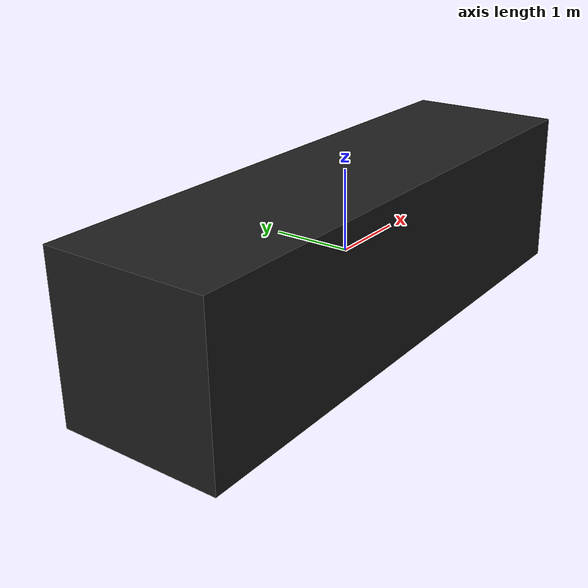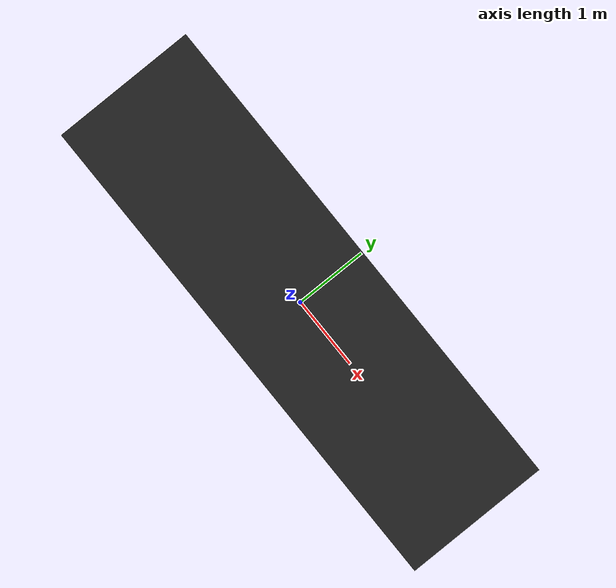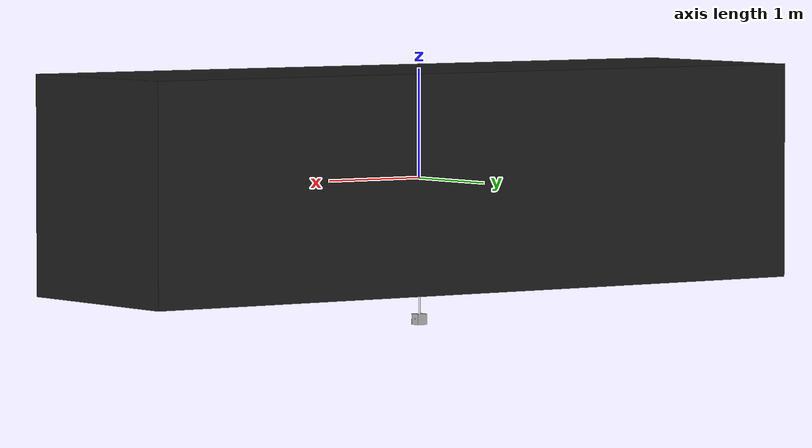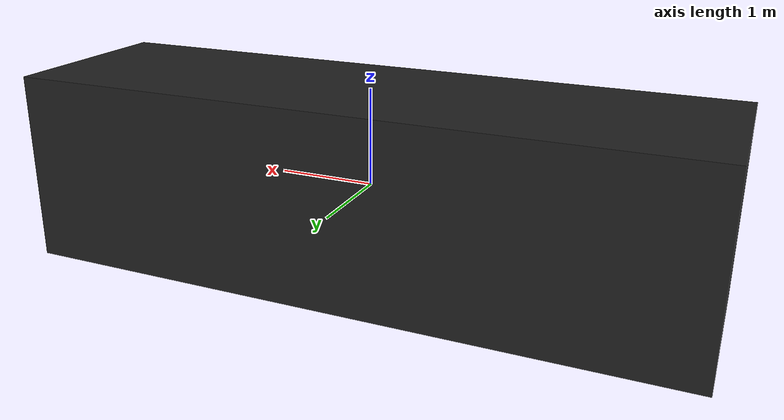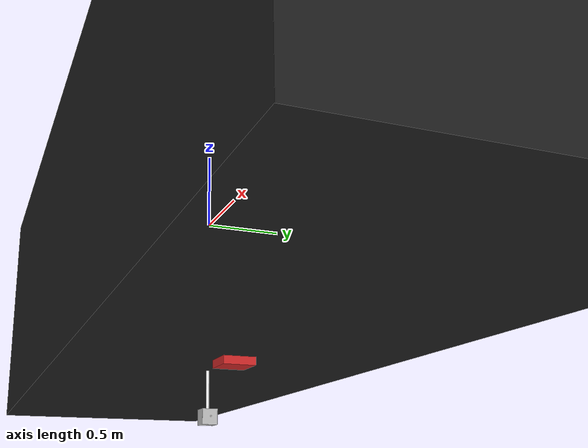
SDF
<?xml version='1.0'?>
<sdf version='1.7'>
  <model name='blimp_model'>
    <link name='link_0'>
      <pose>0 0 -1.3 0 -0 0</pose>
      <self_collide>0</self_collide>
      <enable_wind>0</enable_wind>
      <kinematic>1</kinematic>
      <visual name='visual'>
        <pose>0 0 0 0 -0 0</pose>
        <geometry>
          <box>
            <size>0.09 0.09 0.09</size>
          </box>
        </geometry>
        <material>
          <lighting>1</lighting>
          <script>
            <uri>file://media/materials/scripts/gazebo.material</uri>
            <name>Gazebo/White</name>
          </script>
          <shader type='pixel'/>
        </material>
        <transparency>0</transparency>
        <cast_shadows>1</cast_shadows>
      </visual>
      <collision name='collision'>
        <laser_retro>0</laser_retro>
        <max_contacts>10</max_contacts>
        <pose>0 0 0 0 -0 0</pose>
        <geometry>
          <box>
            <size>0.09 0.09 0.09</size>
          </box>
        </geometry>
        <surface>
          <friction>
            <ode>
              <mu>1</mu>
              <mu2>1</mu2>
              <fdir1>0 0 0</fdir1>
              <slip1>0</slip1>
              <slip2>0</slip2>
            </ode>
            <torsional>
              <coefficient>1</coefficient>
              <patch_radius>0</patch_radius>
              <surface_radius>0</surface_radius>
              <use_patch_radius>1</use_patch_radius>
              <ode>
                <slip>0</slip>
              </ode>
            </torsional>
          </friction>
          <bounce>
            <restitution_coefficient>0</restitution_coefficient>
            <threshold>1e+06</threshold>
          </bounce>
          <contact>
            <collide_without_contact>0</collide_without_contact>
            <collide_without_contact_bitmask>1</collide_without_contact_bitmask>
            <collide_bitmask>1</collide_bitmask>
            <ode>
              <soft_cfm>0</soft_cfm>
              <soft_erp>0.2</soft_erp>
              <kp>1e+13</kp>
              <kd>1</kd>
              <max_vel>0.01</max_vel>
              <min_depth>0</min_depth>
            </ode>
            <bullet>
              <split_impulse>1</split_impulse>
              <split_impulse_penetration_threshold>-0.01</split_impulse_penetration_threshold>
              <soft_cfm>0</soft_cfm>
              <soft_erp>0.2</soft_erp>
              <kp>1e+13</kp>
              <kd>1</kd>
            </bullet>
          </contact>
        </surface>
      </collision>
    </link>
    <link name='link_0_1'>
      <pose>0 0 0 0 -0 0</pose>
      <self_collide>0</self_collide>
      <enable_wind>0</enable_wind>
      <kinematic>0</kinematic>
      <visual name='visual'>
        <pose>0 0 0 0 -0 0</pose>
        <geometry>
          <box>
            <size>7 2 2</size>
          </box>
        </geometry>
        <material>
          <lighting>1</lighting>
          <script>
            <uri>file://media/materials/scripts/gazebo.material</uri>
            <name>Gazebo/Black</name>
          </script>
          <shader type='pixel'/>
        </material>
        <transparency>0</transparency>
        <cast_shadows>1</cast_shadows>
      </visual>
      <collision name='collision'>
        <laser_retro>0</laser_retro>
        <max_contacts>10</max_contacts>
        <pose>0 0 0 0 -0 0</pose>
        <geometry>
          <box>
            <size>7 2 2</size>
          </box>
        </geometry>
        <surface>
          <friction>
            <ode>
              <mu>1</mu>
              <mu2>1</mu2>
              <fdir1>0 0 0</fdir1>
              <slip1>0</slip1>
              <slip2>0</slip2>
            </ode>
            <torsional>
              <coefficient>1</coefficient>
              <patch_radius>0</patch_radius>
              <surface_radius>0</surface_radius>
              <use_patch_radius>1</use_patch_radius>
              <ode>
                <slip>0</slip>
              </ode>
            </torsional>
          </friction>
          <bounce>
            <restitution_coefficient>0</restitution_coefficient>
            <threshold>1e+06</threshold>
          </bounce>
          <contact>
            <collide_without_contact>0</collide_without_contact>
            <collide_without_contact_bitmask>1</collide_without_contact_bitmask>
            <collide_bitmask>1</collide_bitmask>
            <ode>
              <soft_cfm>0</soft_cfm>
              <soft_erp>0.2</soft_erp>
              <kp>1e+13</kp>
              <kd>1</kd>
              <max_vel>0.01</max_vel>
              <min_depth>0</min_depth>
            </ode>
            <bullet>
              <split_impulse>1</split_impulse>
              <split_impulse_penetration_threshold>-0.01</split_impulse_penetration_threshold>
              <soft_cfm>0</soft_cfm>
              <soft_erp>0.2</soft_erp>
              <kp>1e+13</kp>
              <kd>1</kd>
            </bullet>
          </contact>
        </surface>
      </collision>
    </link>
    <link name='link_1'>
      <pose>0 0 -1.15 0 -0 0</pose>
      <self_collide>0</self_collide>
      <enable_wind>0</enable_wind>
      <kinematic>1</kinematic>
      <visual name='visual'>
        <pose>0 0 0 0 -0 0</pose>
        <geometry>
          <cylinder>
            <radius>0.01</radius>
            <length>0.3</length>
          </cylinder>
        </geometry>
        <material>
          <lighting>1</lighting>
          <script>
            <uri>file://media/materials/scripts/gazebo.material</uri>
            <name>Gazebo/White</name>
          </script>
          <shader type='pixel'/>
        </material>
        <transparency>0</transparency>
        <cast_shadows>1</cast_shadows>
      </visual>
      <collision name='collision'>
        <laser_retro>0</laser_retro>
        <max_contacts>10</max_contacts>
        <pose>0 0 0 0 -0 0</pose>
        <geometry>
          <cylinder>
            <radius>0.01</radius>
            <length>0.3</length>
          </cylinder>
        </geometry>
        <surface>
          <friction>
            <ode>
              <mu>1</mu>
              <mu2>1</mu2>
              <fdir1>0 0 0</fdir1>
              <slip1>0</slip1>
              <slip2>0</slip2>
            </ode>
            <torsional>
              <coefficient>1</coefficient>
              <patch_radius>0</patch_radius>
              <surface_radius>0</surface_radius>
              <use_patch_radius>1</use_patch_radius>
              <ode>
                <slip>0</slip>
              </ode>
            </torsional>
          </friction>
          <bounce>
            <restitution_coefficient>0</restitution_coefficient>
            <threshold>1e+06</threshold>
          </bounce>
          <contact>
            <collide_without_contact>0</collide_without_contact>
            <collide_without_contact_bitmask>1</collide_without_contact_bitmask>
            <collide_bitmask>1</collide_bitmask>
            <ode>
              <soft_cfm>0</soft_cfm>
              <soft_erp>0.2</soft_erp>
              <kp>1e+13</kp>
              <kd>1</kd>
              <max_vel>0.01</max_vel>
              <min_depth>0</min_depth>
            </ode>
            <bullet>
              <split_impulse>1</split_impulse>
              <split_impulse_penetration_threshold>-0.01</split_impulse_penetration_threshold>
              <soft_cfm>0</soft_cfm>
              <soft_erp>0.2</soft_erp>
              <kp>1e+13</kp>
              <kd>1</kd>
            </bullet>
          </contact>
        </surface>
      </collision>
    </link>
    <link name='link_1_0'>
      <inertial>
        <mass>0.217069</mass>
        <inertia>
          <ixx>0.0110663</ixx>
          <ixy>0</ixy>
          <ixz>0</ixz>
          <iyy>0.0155505</iyy>
          <iyz>0</iyz>
          <izz>0.0217014</izz>
        </inertia>
        <pose>0 0 0 0 -0 0</pose>
      </inertial>
      <pose>0.5 0 -0.95 0 0 -3.13815</pose>
      <self_collide>0</self_collide>
      <enable_wind>0</enable_wind>
      <kinematic>1</kinematic>
      <visual name='visual'>
        <pose>0 0 0 0 -0 0</pose>
        <geometry>
          <box>
            <size>0.2 0.2 0.2</size>
          </box>
        </geometry>
        <material>
          <lighting>1</lighting>
          <script>
            <uri>file://media/materials/scripts/gazebo.material</uri>
            <name>Gazebo/Red</name>
          </script>
          <shader type='pixel'/>
        </material>
        <transparency>0</transparency>
        <cast_shadows>1</cast_shadows>
      </visual>
      <collision name='collision'>
        <laser_retro>0</laser_retro>
        <max_contacts>10</max_contacts>
        <pose>0 0 0 0 -0 0</pose>
        <geometry>
          <box>
            <size>0.2 0.2 0.2</size>
          </box>
        </geometry>
        <surface>
          <friction>
            <ode>
              <mu>1</mu>
              <mu2>1</mu2>
              <fdir1>0 0 0</fdir1>
              <slip1>0</slip1>
              <slip2>0</slip2>
            </ode>
            <torsional>
              <coefficient>1</coefficient>
              <patch_radius>0</patch_radius>
              <surface_radius>0</surface_radius>
              <use_patch_radius>1</use_patch_radius>
              <ode>
                <slip>0</slip>
              </ode>
            </torsional>
          </friction>
          <bounce>
            <restitution_coefficient>0</restitution_coefficient>
            <threshold>1e+06</threshold>
          </bounce>
          <contact>
            <collide_without_contact>0</collide_without_contact>
            <collide_without_contact_bitmask>1</collide_without_contact_bitmask>
            <collide_bitmask>1</collide_bitmask>
            <ode>
              <soft_cfm>0</soft_cfm>
              <soft_erp>0.2</soft_erp>
              <kp>1e+13</kp>
              <kd>1</kd>
              <max_vel>0.01</max_vel>
              <min_depth>0</min_depth>
            </ode>
            <bullet>
              <split_impulse>1</split_impulse>
              <split_impulse_penetration_threshold>-0.01</split_impulse_penetration_threshold>
              <soft_cfm>0</soft_cfm>
              <soft_erp>0.2</soft_erp>
              <kp>1e+13</kp>
              <kd>1</kd>
            </bullet>
          </contact>
        </surface>
      </collision>
    </link>
     <model name='Apriltag36_11_00000'>
      <link name='main'>
        <pose>0 0 0 0 -0 0</pose>
        <visual name='main_Visual'>
          <geometry>
            <box>
              <size>0.01 0.01 0.005</size>
            </box>
          </geometry>
            <material>
              <script>
                <uri>model://Apriltag36_11_00000/materials/scripts</uri>
                <uri>model://Apriltag36_11_00000/materials/textures</uri>
                <name>Apriltag36_11_00000</name>
              </script>
            </material>
        </visual>
        <self_collide>0</self_collide>
        <enable_wind>0</enable_wind>
        <kinematic>1</kinematic>
      </link>
      <static>1</static>
      <pose>0.050037 0.005402 -1.29551 0.536711 -1.56599 -0.540151</pose>
    </model>
    <model name='Apriltag36_11_00001'>
      <link name='main'>
        <pose>0 0 0 0 -0 0</pose>
        <visual name='main_Visual'>
          <geometry>
            <box>
              <size>0.1 0.1 0.001</size>
            </box>
          </geometry>
          <material>
            <script>
              <uri>model://Apriltag36_11_00001/materials/scripts</uri>
              <uri>model://Apriltag36_11_00001/materials/textures</uri>
              <name>Apriltag36_11_00001</name>
            </script>
          </material>
        </visual>
        <self_collide>0</self_collide>
        <enable_wind>0</enable_wind>
        <kinematic>1</kinematic>
      </link>
      <static>1</static>
      <pose>0.05 0 -1.3 0.536731 -1.56599 -0.54017</pose>
    </model>
    <model name='Apriltag36_11_00002'>
      <link name='main'>
        <pose>0 0 0 0 -0 0</pose>
        <visual name='main_Visual'>
          <geometry>
            <box>
              <size>0.1 0.1 0.001</size>
            </box>
          </geometry>
          <material>
            <script>
              <uri>model://Apriltag36_11_00002/materials/scripts</uri>
              <uri>model://Apriltag36_11_00002/materials/textures</uri>
              <name>Apriltag36_11_00002</name>
            </script>
          </material>
        </visual>
        <self_collide>0</self_collide>
        <enable_wind>0</enable_wind>
        <kinematic>1</kinematic>
      </link>
      <static>1</static>
      <pose>-0 0.05 -1.3 2.12703 -1.56766 -0.549383</pose>
    </model>
    <model name='Apriltag36_11_00003'>
      <link name='main'>
        <pose>0 0 0 0 -0 0</pose>
        <visual name='main_Visual'>
          <geometry>
            <box>
              <size>0.1 0.1 0.001</size>
            </box>
          </geometry>
          <material>
            <script>
              <uri>model://Apriltag36_11_00003/materials/scripts</uri>
              <uri>model://Apriltag36_11_00003/materials/textures</uri>
              <name>Apriltag36_11_00003</name>
            </script>
          </material>
        </visual>
        <self_collide>0</self_collide>
        <enable_wind>0</enable_wind>
        <kinematic>1</kinematic>
      </link>
      <static>1</static>
      <pose>0 -0.05 -1.3 -3.1351 -1.55855 1.55812</pose>
    </model>
    <model name='Apriltag36_11_00004'>
      <link name='main'>
        <pose>0 0 0 0 -0 0</pose>
        <visual name='main_Visual'>
          <geometry>
            <box>
              <size>0.1 0.1 0.001</size>
            </box>
          </geometry>
          <material>
            <script>
              <uri>model://Apriltag36_11_00004/materials/scripts</uri>
              <uri>model://Apriltag36_11_00004/materials/textures</uri>
              <name>Apriltag36_11_00004</name>
            </script>
          </material>
        </visual>
        <self_collide>0</self_collide>
        <enable_wind>0</enable_wind>
        <kinematic>1</kinematic>
      </link>
      <static>1</static>
      <pose>-0.05 -0 -1.3 -0.004414 -1.55729 3.11245</pose>
    </model>
    <static>1</static>
    <allow_auto_disable>1</allow_auto_disable>
  </model>
</sdf>
